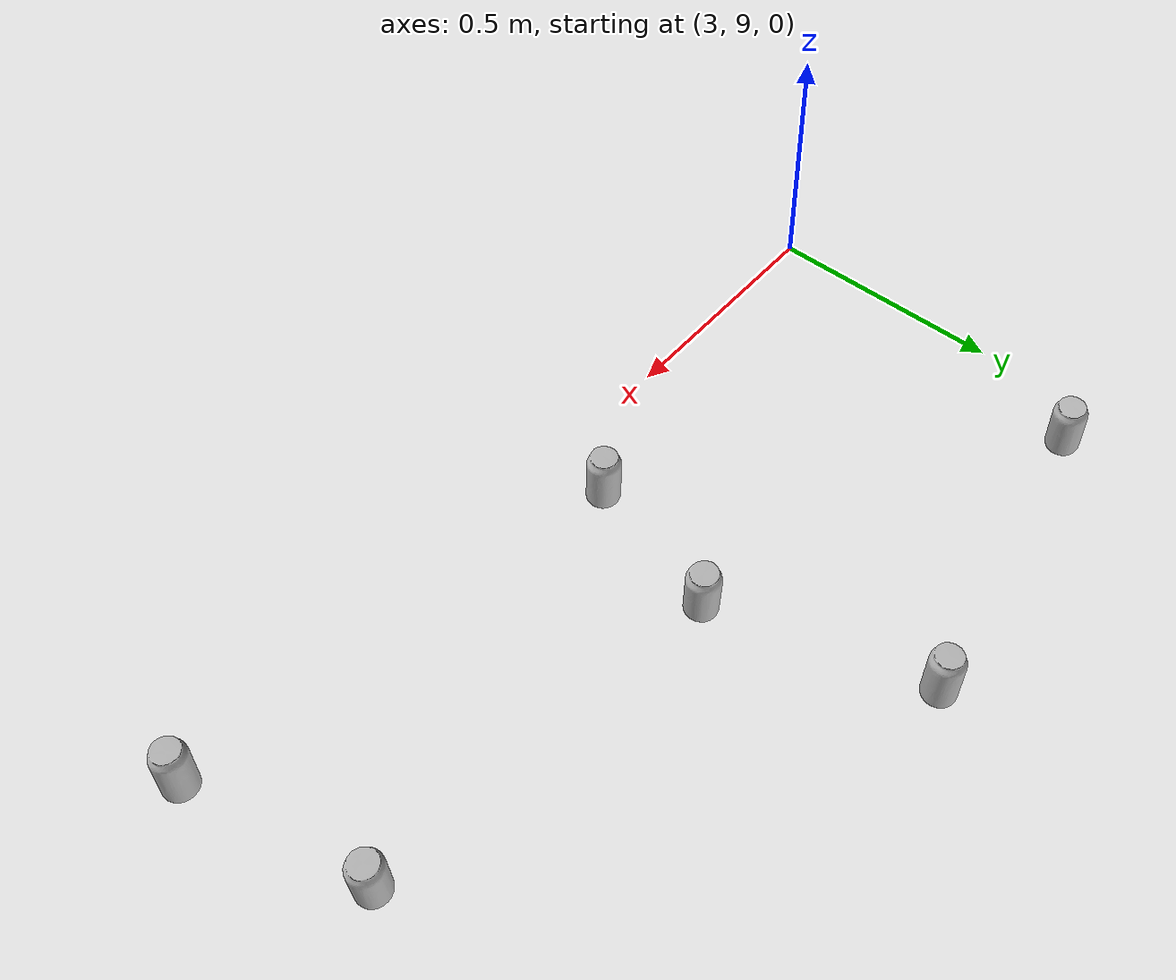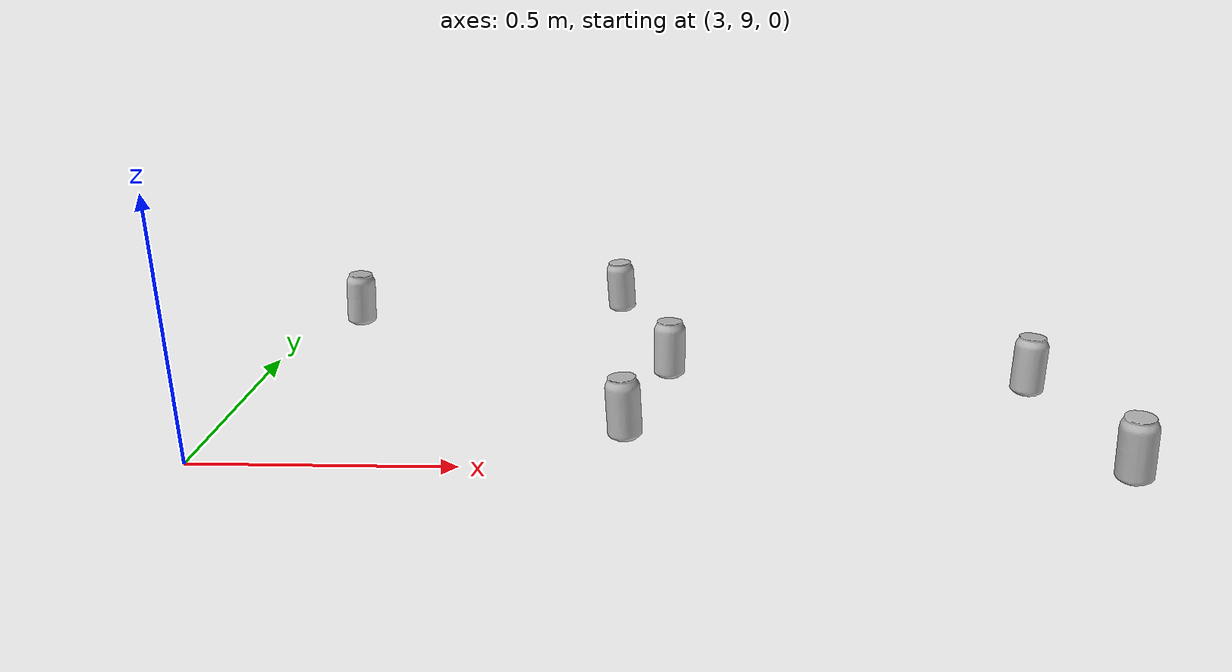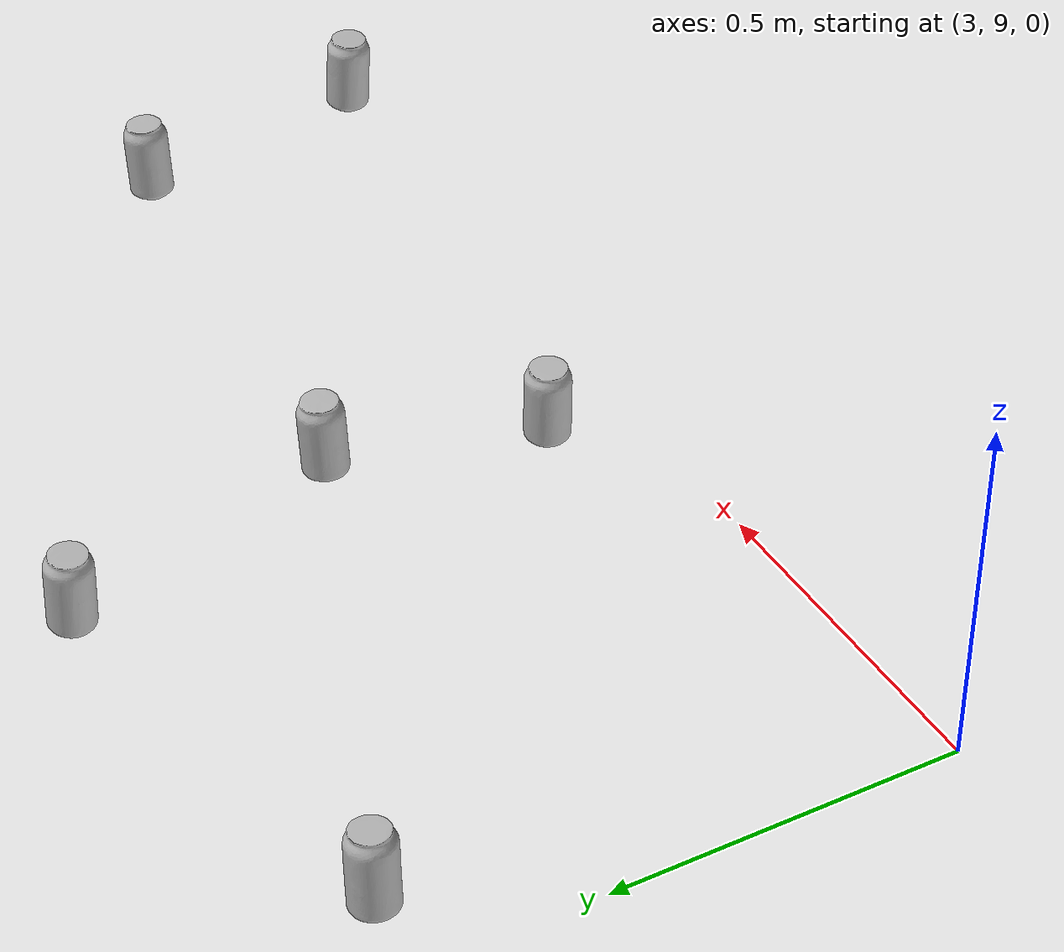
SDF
<sdf version="1.6">
 <world name="default">
  <model name="coke_can92">
   <link name="link">
    <inertial>
     <pose>0 0 0.06 0 -0 0</pose>
     <mass>0.39</mass>
     <inertia>
      <ixx>0.00055575</ixx>
      <ixy>0</ixy>
      <ixz>0</ixz>
      <iyy>0.00055575</iyy>
      <iyz>0</iyz>
      <izz>0.0001755</izz>
     </inertia>
    </inertial>
    <collision name="collision">
     <pose>0.003937 0.004724 -0.18 0 -0 0</pose>
     <geometry><mesh><uri>model://coke_can/meshes/coke_can.dae</uri></mesh></geometry>
     <surface>
      <friction><ode><mu>1</mu><mu2>1</mu2></ode></friction>
      <contact>
       <ode><kp>1e+07</kp><kd>1</kd><min_depth>0.001</min_depth><max_vel>0.1</max_vel></ode>
       <collide_bitmask>256</collide_bitmask>
      </contact>
     </surface>
    </collision>
    <visual name="visual">
     <pose>0.003937 0.004724 -0.18 0 -0 0</pose>
     <geometry><mesh><uri>model://coke_can/meshes/coke_can.dae</uri></mesh></geometry>
    </visual>
   </link>
   <pose>3.79292 9.13105 -0.002659 -0.055097 0.007752 1.25252</pose>
  </model>
  <model name="coke_can164">
   <link name="link">
    <inertial>
     <pose>0 0 0.06 0 -0 0</pose>
     <mass>0.39</mass>
     <inertia>
      <ixx>0.00055575</ixx>
      <ixy>0</ixy>
      <ixz>0</ixz>
      <iyy>0.00055575</iyy>
      <iyz>0</iyz>
      <izz>0.0001755</izz>
     </inertia>
    </inertial>
    <collision name="collision">
     <pose>0.003937 0.004724 -0.18 0 -0 0</pose>
     <geometry><mesh><uri>model://coke_can/meshes/coke_can.dae</uri></mesh></geometry>
     <surface>
      <friction><ode><mu>1</mu><mu2>1</mu2></ode></friction>
      <contact>
       <ode><kp>1e+07</kp><kd>1</kd><min_depth>0.001</min_depth><max_vel>0.1</max_vel></ode>
       <collide_bitmask>256</collide_bitmask>
      </contact>
     </surface>
    </collision>
    <visual name="visual">
     <pose>0.003937 0.004724 -0.18 0 -0 0</pose>
     <geometry><mesh><uri>model://coke_can/meshes/coke_can.dae</uri></mesh></geometry>
    </visual>
   </link>
   <pose>3.87196 9.43424 -0.002659 -0.055114 0.007739 0.017841</pose>
  </model>
  <model name="coke_can178">
   <link name="link">
    <inertial>
     <pose>0 0 0.06 0 -0 0</pose>
     <mass>0.39</mass>
     <inertia>
      <ixx>0.00055575</ixx>
      <ixy>0</ixy>
      <ixz>0</ixz>
      <iyy>0.00055575</iyy>
      <iyz>0</iyz>
      <izz>0.0001755</izz>
     </inertia>
    </inertial>
    <collision name="collision">
     <pose>0.003937 0.004724 -0.18 0 -0 0</pose>
     <geometry><mesh><uri>model://coke_can/meshes/coke_can.dae</uri></mesh></geometry>
     <surface>
      <friction><ode><mu>1</mu><mu2>1</mu2></ode></friction>
      <contact>
       <ode><kp>1e+07</kp><kd>1</kd><min_depth>0.001</min_depth><max_vel>0.1</max_vel></ode>
       <collide_bitmask>256</collide_bitmask>
      </contact>
     </surface>
    </collision>
    <visual name="visual">
     <pose>0.003937 0.004724 -0.18 0 -0 0</pose>
     <geometry><mesh><uri>model://coke_can/meshes/coke_can.dae</uri></mesh></geometry>
    </visual>
   </link>
   <pose>4.61618 9.35959 -0.002659 -0.055085 0.00776 -0.436029</pose>
  </model>
  <model name="coke_can651">
   <link name="link">
    <inertial>
     <pose>0 0 0.06 0 -0 0</pose>
     <mass>0.39</mass>
     <inertia>
      <ixx>0.00055575</ixx>
      <ixy>0</ixy>
      <ixz>0</ixz>
      <iyy>0.00055575</iyy>
      <iyz>0</iyz>
      <izz>0.0001755</izz>
     </inertia>
    </inertial>
    <collision name="collision">
     <pose>0.003937 0.004724 -0.18 0 -0 0</pose>
     <geometry><mesh><uri>model://coke_can/meshes/coke_can.dae</uri></mesh></geometry>
     <surface>
      <friction><ode><mu>1</mu><mu2>1</mu2></ode></friction>
      <contact>
       <ode><kp>1e+07</kp><kd>1</kd><min_depth>0.001</min_depth><max_vel>0.1</max_vel></ode>
       <collide_bitmask>256</collide_bitmask>
      </contact>
     </surface>
    </collision>
    <visual name="visual">
     <pose>0.003937 0.004724 -0.18 0 -0 0</pose>
     <geometry><mesh><uri>model://coke_can/meshes/coke_can.dae</uri></mesh></geometry>
    </visual>
   </link>
   <pose>4.6966 8.98244 -0.002659 -0.055116 0.007738 2.13306</pose>
  </model>
  <model name="coke_can852">
   <link name="link">
    <inertial>
     <pose>0 0 0.06 0 -0 0</pose>
     <mass>0.39</mass>
     <inertia>
      <ixx>0.00055575</ixx>
      <ixy>0</ixy>
      <ixz>0</ixz>
      <iyy>0.00055575</iyy>
      <iyz>0</iyz>
      <izz>0.0001755</izz>
     </inertia>
    </inertial>
    <collision name="collision">
     <pose>0.003937 0.004724 -0.18 0 -0 0</pose>
     <geometry><mesh><uri>model://coke_can/meshes/coke_can.dae</uri></mesh></geometry>
     <surface>
      <friction><ode><mu>1</mu><mu2>1</mu2></ode></friction>
      <contact>
       <ode><kp>1e+07</kp><kd>1</kd><min_depth>0.001</min_depth><max_vel>0.1</max_vel></ode>
       <collide_bitmask>256</collide_bitmask>
      </contact>
     </surface>
    </collision>
    <visual name="visual">
     <pose>0.003937 0.004724 -0.18 0 -0 0</pose>
     <geometry><mesh><uri>model://coke_can/meshes/coke_can.dae</uri></mesh></geometry>
    </visual>
   </link>
   <pose>3.11403 9.75031 -0.002659 -0.055133 0.007727 -1.34645</pose>
  </model>
  <model name="coke_can928">
   <link name="link">
    <inertial>
     <pose>0 0 0.06 0 -0 0</pose>
     <mass>0.39</mass>
     <inertia>
      <ixx>0.00055575</ixx>
      <ixy>0</ixy>
      <ixz>0</ixz>
      <iyy>0.00055575</iyy>
      <iyz>0</iyz>
      <izz>0.0001755</izz>
     </inertia>
    </inertial>
    <collision name="collision">
     <pose>0.003937 0.004724 -0.18 0 -0 0</pose>
     <geometry><mesh><uri>model://coke_can/meshes/coke_can.dae</uri></mesh></geometry>
     <surface>
      <friction><ode><mu>1</mu><mu2>1</mu2></ode></friction>
      <contact>
       <ode><kp>1e+07</kp><kd>1</kd><min_depth>0.001</min_depth><max_vel>0.1</max_vel></ode>
       <collide_bitmask>256</collide_bitmask>
      </contact>
     </surface>
    </collision>
    <visual name="visual">
     <pose>0.003937 0.004724 -0.18 0 -0 0</pose>
     <geometry><mesh><uri>model://coke_can/meshes/coke_can.dae</uri></mesh></geometry>
    </visual>
   </link>
   <pose>3.7452 9.8639 -0.002659 -0.055132 0.007727 1.79432</pose>
  </model>
 </world>
</sdf>
